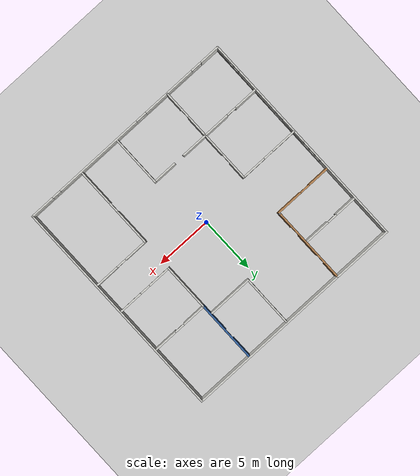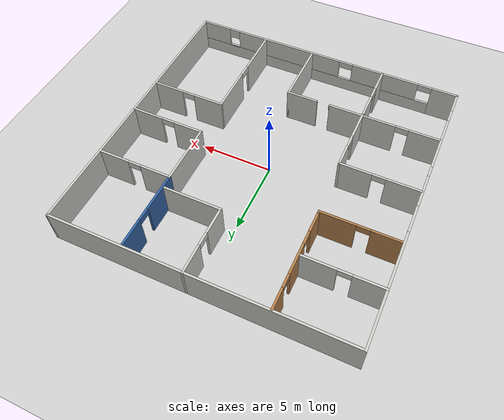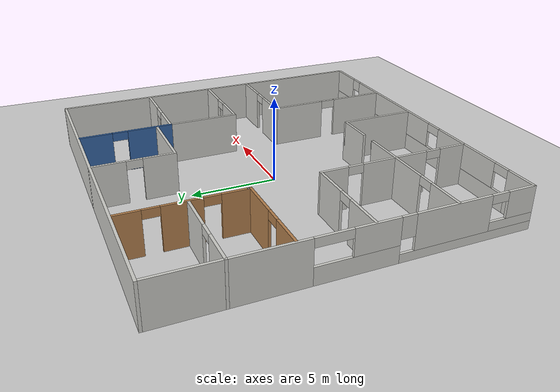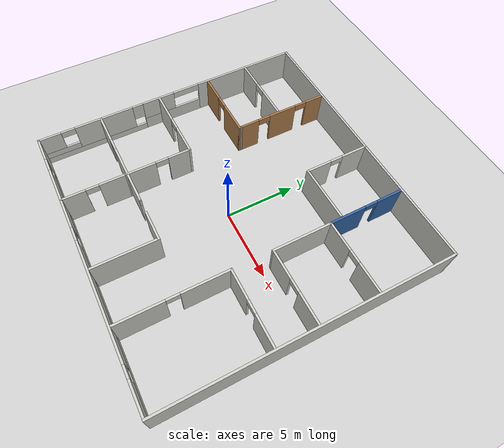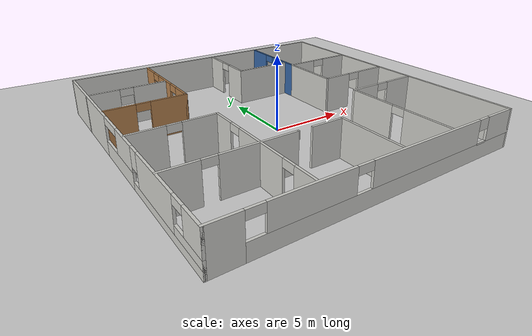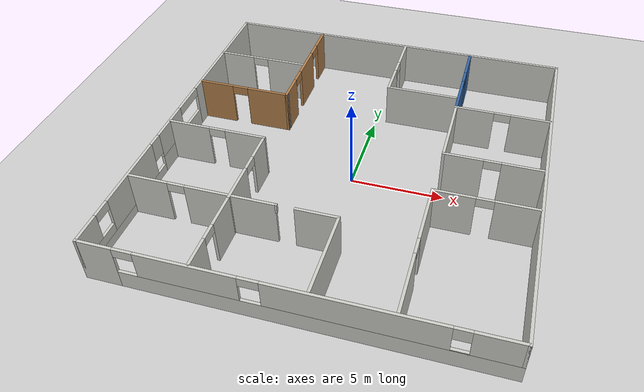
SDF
<sdf version="1.6">
 <world name="default">
  <model name="ground_plane">
   <static>1</static>
   <link name="link">
    <collision name="collision">
     <geometry><plane><normal>0 0 1</normal><size>100 100</size></plane></geometry>
     <surface>
      <contact><collide_bitmask>65535</collide_bitmask></contact>
      <friction><ode><mu>100</mu><mu2>50</mu2></ode></friction>
     </surface>
    </collision>
    <visual name="visual">
     <cast_shadows>0</cast_shadows>
     <geometry><plane><normal>0 0 1</normal><size>100 100</size></plane></geometry>
     <material>
      <script><uri>file://media/materials/scripts/gazebo.material</uri><name>Gazebo/Grey</name></script>
     </material>
    </visual>
   </link>
  </model>
  <model name="theoffice">
   <pose>-0.089892 0.29905 0 0 -0 0</pose>
   <link name="Wall_10">
    <pose>0.001622 -9.925 0 0 -0 0</pose>
    <visual name="Wall_10_Visual_0">
     <pose>-9.06911 0 1.25 0 -0 0</pose>
     <geometry><box><size>1.86178 0.15 2.5</size></box></geometry>
     <material>
      <script><uri>file://media/materials/scripts/gazebo.material</uri><name>Gazebo/CeilingTiled</name></script>
      <ambient>0.00784314 0.00784314 0.00784314 1</ambient>
     </material>
     <meta><layer>0</layer></meta>
    </visual>
    <collision name="Wall_10_Collision_0">
     <geometry><box><size>1.86178 0.15 2.5</size></box></geometry>
     <pose>-9.06911 0 1.25 0 -0 0</pose>
    </collision>
    <visual name="Wall_10_Visual_1">
     <pose>0.930891 0 0.5 0 -0 0</pose>
     <geometry><box><size>18.1382 0.15 1</size></box></geometry>
     <material>
      <script><uri>file://media/materials/scripts/gazebo.material</uri><name>Gazebo/CeilingTiled</name></script>
      <ambient>0.00784314 0.00784314 0.00784314 1</ambient>
     </material>
     <meta><layer>0</layer></meta>
    </visual>
    <collision name="Wall_10_Collision_1">
     <geometry><box><size>18.1382 0.15 1</size></box></geometry>
     <pose>0.930891 0 0.5 0 -0 0</pose>
    </collision>
    <visual name="Wall_10_Visual_2">
     <pose>-4.6856 0 1.75 0 -0 0</pose>
     <geometry><box><size>4.90524 0.15 1.5</size></box></geometry>
     <material>
      <script><uri>file://media/materials/scripts/gazebo.material</uri><name>Gazebo/CeilingTiled</name></script>
      <ambient>0.00784314 0.00784314 0.00784314 1</ambient>
     </material>
     <meta><layer>0</layer></meta>
    </visual>
    <collision name="Wall_10_Collision_2">
     <geometry><box><size>4.90524 0.15 1.5</size></box></geometry>
     <pose>-4.6856 0 1.75 0 -0 0</pose>
    </collision>
    <visual name="Wall_10_Visual_3">
     <pose>2.85911 0 1.75 0 -0 0</pose>
     <geometry><box><size>8.18417 0.15 1.5</size></box></geometry>
     <material>
      <script><uri>file://media/materials/scripts/gazebo.material</uri><name>Gazebo/CeilingTiled</name></script>
      <ambient>0.00784314 0.00784314 0.00784314 1</ambient>
     </material>
     <meta><layer>0</layer></meta>
    </visual>
    <collision name="Wall_10_Collision_3">
     <geometry><box><size>8.18417 0.15 1.5</size></box></geometry>
     <pose>2.85911 0 1.75 0 -0 0</pose>
    </collision>
    <visual name="Wall_10_Visual_4">
     <pose>8.8756 0 1.75 0 -0 0</pose>
     <geometry><box><size>2.2488 0.15 1.5</size></box></geometry>
     <material>
      <script><uri>file://media/materials/scripts/gazebo.material</uri><name>Gazebo/CeilingTiled</name></script>
      <ambient>0.00784314 0.00784314 0.00784314 1</ambient>
     </material>
     <meta><layer>0</layer></meta>
    </visual>
    <collision name="Wall_10_Collision_4">
     <geometry><box><size>2.2488 0.15 1.5</size></box></geometry>
     <pose>8.8756 0 1.75 0 -0 0</pose>
    </collision>
    <visual name="Wall_10_Visual_5">
     <pose>7.3512 0 1 0 -0 0</pose>
     <geometry><box><size>0.8 0.15 0.1</size></box></geometry>
     <material>
      <script><uri>file://media/materials/scripts/gazebo.material</uri><name>Gazebo/CeilingTiled</name></script>
      <ambient>0.00784314 0.00784314 0.00784314 1</ambient>
     </material>
     <meta><layer>0</layer></meta>
    </visual>
    <collision name="Wall_10_Collision_5">
     <geometry><box><size>0.8 0.15 0.1</size></box></geometry>
     <pose>7.3512 0 1 0 -0 0</pose>
    </collision>
    <visual name="Wall_10_Visual_6">
     <pose>7.3512 0 2.15 0 -0 0</pose>
     <geometry><box><size>0.8 0.15 0.7</size></box></geometry>
     <material>
      <script><uri>file://media/materials/scripts/gazebo.material</uri><name>Gazebo/CeilingTiled</name></script>
      <ambient>0.00784314 0.00784314 0.00784314 1</ambient>
     </material>
     <meta><layer>0</layer></meta>
    </visual>
    <collision name="Wall_10_Collision_6">
     <geometry><box><size>0.8 0.15 0.7</size></box></geometry>
     <pose>7.3512 0 2.15 0 -0 0</pose>
    </collision>
    <visual name="Wall_10_Visual_7">
     <pose>-7.63822 0 2.25 0 -0 0</pose>
     <geometry><box><size>1 0.15 0.5</size></box></geometry>
     <material>
      <script><uri>file://media/materials/scripts/gazebo.material</uri><name>Gazebo/CeilingTiled</name></script>
      <ambient>0.00784314 0.00784314 0.00784314 1</ambient>
     </material>
     <meta><layer>0</layer></meta>
    </visual>
    <collision name="Wall_10_Collision_7">
     <geometry><box><size>1 0.15 0.5</size></box></geometry>
     <pose>-7.63822 0 2.25 0 -0 0</pose>
    </collision>
    <visual name="Wall_10_Visual_8">
     <pose>-1.73297 0 2.25 0 -0 0</pose>
     <geometry><box><size>1 0.15 0.5</size></box></geometry>
     <material>
      <script><uri>file://media/materials/scripts/gazebo.material</uri><name>Gazebo/CeilingTiled</name></script>
      <ambient>0.00784314 0.00784314 0.00784314 1</ambient>
     </material>
     <meta><layer>0</layer></meta>
    </visual>
    <collision name="Wall_10_Collision_8">
     <geometry><box><size>1 0.15 0.5</size></box></geometry>
     <pose>-1.73297 0 2.25 0 -0 0</pose>
    </collision>
   </link>
   <link name="Wall_12">
    <collision name="Wall_12_Collision">
     <geometry><box><size>20 0.15 2.5</size></box></geometry>
     <pose>0 0 1.25 0 -0 0</pose>
    </collision>
    <visual name="Wall_12_Visual">
     <pose>0 0 1.25 0 -0 0</pose>
     <geometry><box><size>20 0.15 2.5</size></box></geometry>
     <material>
      <script><uri>file://media/materials/scripts/gazebo.material</uri><name>Gazebo/CeilingTiled</name></script>
      <ambient>0.00784314 0.00784314 0.00784314 1</ambient>
     </material>
     <meta><layer>0</layer></meta>
    </visual>
    <pose>9.92662 0 0 0 -0 1.5708</pose>
   </link>
   <link name="Wall_14">
    <collision name="Wall_14_Collision">
     <geometry><box><size>20 0.15 2.5</size></box></geometry>
     <pose>0 0 1.25 0 -0 0</pose>
    </collision>
    <visual name="Wall_14_Visual">
     <pose>0 0 1.25 0 -0 0</pose>
     <geometry><box><size>20 0.15 2.5</size></box></geometry>
     <material>
      <script><uri>file://media/materials/scripts/gazebo.material</uri><name>Gazebo/CeilingTiled</name></script>
      <ambient>0.00784314 0.00784314 0.00784314 1</ambient>
     </material>
     <meta><layer>0</layer></meta>
    </visual>
    <pose>0.001622 9.925 0 0 -0 0</pose>
   </link>
   <link name="Wall_22">
    <pose>4.76809 7.15642 0 0 -0 -1.5708</pose>
    <visual name="Wall_22_Visual_0">
     <pose>-1.78497 0 1.25 0 -0 0</pose>
     <geometry><box><size>1.93005 0.15 2.5</size></box></geometry>
     <material>
      <script><uri>file://media/materials/scripts/gazebo.material</uri><name>Gazebo/Grey</name></script>
      <ambient>0.203922 0.396078 0.643137 1</ambient>
     </material>
     <meta><layer>0</layer></meta>
    </visual>
    <collision name="Wall_22_Collision_0">
     <geometry><box><size>1.93005 0.15 2.5</size></box></geometry>
     <pose>-1.78497 0 1.25 0 -0 0</pose>
    </collision>
    <visual name="Wall_22_Visual_1">
     <pose>1.41502 0 1.25 0 -0 0</pose>
     <geometry><box><size>2.66995 0.15 2.5</size></box></geometry>
     <material>
      <script><uri>file://media/materials/scripts/gazebo.material</uri><name>Gazebo/Grey</name></script>
      <ambient>0.203922 0.396078 0.643137 1</ambient>
     </material>
     <meta><layer>0</layer></meta>
    </visual>
    <collision name="Wall_22_Collision_1">
     <geometry><box><size>2.66995 0.15 2.5</size></box></geometry>
     <pose>1.41502 0 1.25 0 -0 0</pose>
    </collision>
    <visual name="Wall_22_Visual_2">
     <pose>-0.36995 0 2.25 0 -0 0</pose>
     <geometry><box><size>0.9 0.15 0.5</size></box></geometry>
     <material>
      <script><uri>file://media/materials/scripts/gazebo.material</uri><name>Gazebo/Grey</name></script>
      <ambient>0.203922 0.396078 0.643137 1</ambient>
     </material>
     <meta><layer>0</layer></meta>
    </visual>
    <collision name="Wall_22_Collision_2">
     <geometry><box><size>0.9 0.15 0.5</size></box></geometry>
     <pose>-0.36995 0 2.25 0 -0 0</pose>
    </collision>
   </link>
   <link name="Wall_25">
    <pose>7.31809 4.48142 0 0 -0 0</pose>
    <visual name="Wall_25_Visual_0">
     <pose>-1.54018 0 1.25 0 -0 0</pose>
     <geometry><box><size>2.16963 0.15 2.5</size></box></geometry>
     <material>
      <script><uri>file://media/materials/scripts/gazebo.material</uri><name>Gazebo/CeilingTiled</name></script>
      <ambient>0.203922 0.396078 0.643137 1</ambient>
     </material>
     <meta><layer>0</layer></meta>
    </visual>
    <collision name="Wall_25_Collision_0">
     <geometry><box><size>2.16963 0.15 2.5</size></box></geometry>
     <pose>-1.54018 0 1.25 0 -0 0</pose>
    </collision>
    <visual name="Wall_25_Visual_1">
     <pose>1.53482 0 1.25 0 -0 0</pose>
     <geometry><box><size>2.18037 0.15 2.5</size></box></geometry>
     <material>
      <script><uri>file://media/materials/scripts/gazebo.material</uri><name>Gazebo/CeilingTiled</name></script>
      <ambient>0.203922 0.396078 0.643137 1</ambient>
     </material>
     <meta><layer>0</layer></meta>
    </visual>
    <collision name="Wall_25_Collision_1">
     <geometry><box><size>2.18037 0.15 2.5</size></box></geometry>
     <pose>1.53482 0 1.25 0 -0 0</pose>
    </collision>
    <visual name="Wall_25_Visual_2">
     <pose>-0.00537 0 2.25 0 -0 0</pose>
     <geometry><box><size>0.9 0.15 0.5</size></box></geometry>
     <material>
      <script><uri>file://media/materials/scripts/gazebo.material</uri><name>Gazebo/CeilingTiled</name></script>
      <ambient>0.203922 0.396078 0.643137 1</ambient>
     </material>
     <meta><layer>0</layer></meta>
    </visual>
    <collision name="Wall_25_Collision_2">
     <geometry><box><size>0.9 0.15 0.5</size></box></geometry>
     <pose>-0.00537 0 2.25 0 -0 0</pose>
    </collision>
   </link>
   <link name="Wall_30">
    <pose>-4.49838 -5.4215 0 0 -0 0</pose>
    <visual name="Wall_30_Visual_0">
     <pose>-4.37611 0 1.25 0 -0 0</pose>
     <geometry><box><size>2.24779 0.15 2.5</size></box></geometry>
     <material>
      <script><uri>file://media/materials/scripts/gazebo.material</uri><name>Gazebo/CeilingTiled</name></script>
      <ambient>0.988235 0.913725 0.309804 1</ambient>
     </material>
     <meta><layer>0</layer></meta>
    </visual>
    <collision name="Wall_30_Collision_0">
     <geometry><box><size>2.24779 0.15 2.5</size></box></geometry>
     <pose>-4.37611 0 1.25 0 -0 0</pose>
    </collision>
    <visual name="Wall_30_Visual_1">
     <pose>0.005075 0 1.25 0 -0 0</pose>
     <geometry><box><size>4.71457 0.15 2.5</size></box></geometry>
     <material>
      <script><uri>file://media/materials/scripts/gazebo.material</uri><name>Gazebo/CeilingTiled</name></script>
      <ambient>0.988235 0.913725 0.309804 1</ambient>
     </material>
     <meta><layer>0</layer></meta>
    </visual>
    <collision name="Wall_30_Collision_1">
     <geometry><box><size>4.71457 0.15 2.5</size></box></geometry>
     <pose>0.005075 0 1.25 0 -0 0</pose>
    </collision>
    <visual name="Wall_30_Visual_2">
     <pose>4.38118 0 1.25 0 -0 0</pose>
     <geometry><box><size>2.23764 0.15 2.5</size></box></geometry>
     <material>
      <script><uri>file://media/materials/scripts/gazebo.material</uri><name>Gazebo/CeilingTiled</name></script>
      <ambient>0.988235 0.913725 0.309804 1</ambient>
     </material>
     <meta><layer>0</layer></meta>
    </visual>
    <collision name="Wall_30_Collision_2">
     <geometry><box><size>2.23764 0.15 2.5</size></box></geometry>
     <pose>4.38118 0 1.25 0 -0 0</pose>
    </collision>
    <visual name="Wall_30_Visual_3">
     <pose>-2.80221 0 2.25 0 -0 0</pose>
     <geometry><box><size>0.9 0.15 0.5</size></box></geometry>
     <material>
      <script><uri>file://media/materials/scripts/gazebo.material</uri><name>Gazebo/CeilingTiled</name></script>
      <ambient>0.988235 0.913725 0.309804 1</ambient>
     </material>
     <meta><layer>0</layer></meta>
    </visual>
    <collision name="Wall_30_Collision_3">
     <geometry><box><size>0.9 0.15 0.5</size></box></geometry>
     <pose>-2.80221 0 2.25 0 -0 0</pose>
    </collision>
    <visual name="Wall_30_Visual_4">
     <pose>2.36236 0 2.25 0 -0 0</pose>
     <geometry><box><size>0.1 0.15 0.5</size></box></geometry>
     <material>
      <script><uri>file://media/materials/scripts/gazebo.material</uri><name>Gazebo/CeilingTiled</name></script>
      <ambient>0.988235 0.913725 0.309804 1</ambient>
     </material>
     <meta><layer>0</layer></meta>
    </visual>
    <collision name="Wall_30_Collision_4">
     <geometry><box><size>0.1 0.15 0.5</size></box></geometry>
     <pose>2.36236 0 2.25 0 -0 0</pose>
    </collision>
   </link>
   <link name="Wall_31">
    <collision name="Wall_31_Collision">
     <geometry><box><size>4.5 0.15 2.5</size></box></geometry>
     <pose>0 0 1.25 0 -0 0</pose>
    </collision>
    <visual name="Wall_31_Visual">
     <pose>0 0 1.25 0 -0 0</pose>
     <geometry><box><size>4.5 0.15 2.5</size></box></geometry>
     <material>
      <script><uri>file://media/materials/scripts/gazebo.material</uri><name>Gazebo/CeilingTiled</name></script>
      <ambient>0.988235 0.913725 0.309804 1</ambient>
     </material>
     <meta><layer>0</layer></meta>
    </visual>
    <pose>0.926622 -7.5965 0 0 -0 -1.5708</pose>
   </link>
   <link name="Wall_33">
    <pose>-4.49596 -7.69007 0 0 -0 -1.5708</pose>
    <visual name="Wall_33_Visual_0">
     <pose>-1.27394 0 1.25 0 -0 0</pose>
     <geometry><box><size>1.95211 0.15 2.5</size></box></geometry>
     <material>
      <script><uri>file://media/materials/scripts/gazebo.material</uri><name>Gazebo/CeilingTiled</name></script>
      <ambient>0.203922 0.396078 0.643137 1</ambient>
     </material>
     <meta><layer>0</layer></meta>
    </visual>
    <collision name="Wall_33_Collision_0">
     <geometry><box><size>1.95211 0.15 2.5</size></box></geometry>
     <pose>-1.27394 0 1.25 0 -0 0</pose>
    </collision>
    <visual name="Wall_33_Visual_1">
     <pose>1.42606 0 1.25 0 -0 0</pose>
     <geometry><box><size>1.64789 0.15 2.5</size></box></geometry>
     <material>
      <script><uri>file://media/materials/scripts/gazebo.material</uri><name>Gazebo/CeilingTiled</name></script>
      <ambient>0.203922 0.396078 0.643137 1</ambient>
     </material>
     <meta><layer>0</layer></meta>
    </visual>
    <collision name="Wall_33_Collision_1">
     <geometry><box><size>1.64789 0.15 2.5</size></box></geometry>
     <pose>1.42606 0 1.25 0 -0 0</pose>
    </collision>
    <visual name="Wall_33_Visual_2">
     <pose>0.152112 0 2.25 0 -0 0</pose>
     <geometry><box><size>0.9 0.15 0.5</size></box></geometry>
     <material>
      <script><uri>file://media/materials/scripts/gazebo.material</uri><name>Gazebo/CeilingTiled</name></script>
      <ambient>0.203922 0.396078 0.643137 1</ambient>
     </material>
     <meta><layer>0</layer></meta>
    </visual>
    <collision name="Wall_33_Collision_2">
     <geometry><box><size>0.9 0.15 0.5</size></box></geometry>
     <pose>0.152112 0 2.25 0 -0 0</pose>
    </collision>
   </link>
   <link name="Wall_35">
    <collision name="Wall_35_Collision">
     <geometry><box><size>4.25 0.15 2.5</size></box></geometry>
     <pose>0 0 1.25 0 -0 0</pose>
    </collision>
    <visual name="Wall_35_Visual">
     <pose>0 0 1.25 0 -0 0</pose>
     <geometry><box><size>4.25 0.15 2.5</size></box></geometry>
     <material>
      <script><uri>file://media/materials/scripts/gazebo.material</uri><name>Gazebo/CeilingTiled</name></script>
      <ambient>0.988235 0.913725 0.309804 1</ambient>
     </material>
     <meta><layer>0</layer></meta>
    </visual>
    <pose>4.76809 2.43142 0 0 -0 -1.5708</pose>
   </link>
   <link name="Wall_36">
    <pose>7.31809 0.381424 0 0 -0 0</pose>
    <visual name="Wall_36_Visual_0">
     <pose>-1.56417 0 1.25 0 -0 0</pose>
     <geometry><box><size>2.12167 0.15 2.5</size></box></geometry>
     <material>
      <script><uri>file://media/materials/scripts/gazebo.material</uri><name>Gazebo/CeilingTiled</name></script>
      <ambient>0.180392 0.203922 0.211765 1</ambient>
     </material>
     <meta><layer>0</layer></meta>
    </visual>
    <collision name="Wall_36_Collision_0">
     <geometry><box><size>2.12167 0.15 2.5</size></box></geometry>
     <pose>-1.56417 0 1.25 0 -0 0</pose>
    </collision>
    <visual name="Wall_36_Visual_1">
     <pose>1.51083 0 1.25 0 -0 0</pose>
     <geometry><box><size>2.22833 0.15 2.5</size></box></geometry>
     <material>
      <script><uri>file://media/materials/scripts/gazebo.material</uri><name>Gazebo/CeilingTiled</name></script>
      <ambient>0.180392 0.203922 0.211765 1</ambient>
     </material>
     <meta><layer>0</layer></meta>
    </visual>
    <collision name="Wall_36_Collision_1">
     <geometry><box><size>2.22833 0.15 2.5</size></box></geometry>
     <pose>1.51083 0 1.25 0 -0 0</pose>
    </collision>
    <visual name="Wall_36_Visual_2">
     <pose>-0.053335 0 2.25 0 -0 0</pose>
     <geometry><box><size>0.9 0.15 0.5</size></box></geometry>
     <material>
      <script><uri>file://media/materials/scripts/gazebo.material</uri><name>Gazebo/CeilingTiled</name></script>
      <ambient>0.180392 0.203922 0.211765 1</ambient>
     </material>
     <meta><layer>0</layer></meta>
    </visual>
    <collision name="Wall_36_Collision_2">
     <geometry><box><size>0.9 0.15 0.5</size></box></geometry>
     <pose>-0.053335 0 2.25 0 -0 0</pose>
    </collision>
   </link>
   <link name="Wall_38">
    <pose>7.2712 -2.42706 0 0 -0 3.14159</pose>
    <visual name="Wall_38_Visual_0">
     <pose>-1.53166 0 1.25 0 -0 0</pose>
     <geometry><box><size>2.18669 0.15 2.5</size></box></geometry>
     <material>
      <script><uri>file://media/materials/scripts/gazebo.material</uri><name>Gazebo/CeilingTiled</name></script>
      <ambient>0.988235 0.913725 0.309804 1</ambient>
     </material>
     <meta><layer>0</layer></meta>
    </visual>
    <collision name="Wall_38_Collision_0">
     <geometry><box><size>2.18669 0.15 2.5</size></box></geometry>
     <pose>-1.53166 0 1.25 0 -0 0</pose>
    </collision>
    <visual name="Wall_38_Visual_1">
     <pose>1.54334 0 1.25 0 -0 0</pose>
     <geometry><box><size>2.16331 0.15 2.5</size></box></geometry>
     <material>
      <script><uri>file://media/materials/scripts/gazebo.material</uri><name>Gazebo/CeilingTiled</name></script>
      <ambient>0.988235 0.913725 0.309804 1</ambient>
     </material>
     <meta><layer>0</layer></meta>
    </visual>
    <collision name="Wall_38_Collision_1">
     <geometry><box><size>2.16331 0.15 2.5</size></box></geometry>
     <pose>1.54334 0 1.25 0 -0 0</pose>
    </collision>
    <visual name="Wall_38_Visual_2">
     <pose>0.011685 0 2.25 0 -0 0</pose>
     <geometry><box><size>0.9 0.15 0.5</size></box></geometry>
     <material>
      <script><uri>file://media/materials/scripts/gazebo.material</uri><name>Gazebo/CeilingTiled</name></script>
      <ambient>0.988235 0.913725 0.309804 1</ambient>
     </material>
     <meta><layer>0</layer></meta>
    </visual>
    <collision name="Wall_38_Collision_2">
     <geometry><box><size>0.9 0.15 0.5</size></box></geometry>
     <pose>0.011685 0 2.25 0 -0 0</pose>
    </collision>
   </link>
   <link name="Wall_39">
    <pose>4.7212 -6.10206 0 0 -0 -1.5708</pose>
    <visual name="Wall_39_Visual_0">
     <pose>-2.08433 0 1.25 0 -0 0</pose>
     <geometry><box><size>3.33134 0.15 2.5</size></box></geometry>
     <material>
      <script><uri>file://media/materials/scripts/gazebo.material</uri><name>Gazebo/CeilingTiled</name></script>
      <ambient>0.988235 0.913725 0.309804 1</ambient>
     </material>
     <meta><layer>0</layer></meta>
    </visual>
    <collision name="Wall_39_Collision_0">
     <geometry><box><size>3.33134 0.15 2.5</size></box></geometry>
     <pose>-2.08433 0 1.25 0 -0 0</pose>
    </collision>
    <visual name="Wall_39_Visual_1">
     <pose>2.11567 0 1.25 0 -0 0</pose>
     <geometry><box><size>3.26866 0.15 2.5</size></box></geometry>
     <material>
      <script><uri>file://media/materials/scripts/gazebo.material</uri><name>Gazebo/CeilingTiled</name></script>
      <ambient>0.988235 0.913725 0.309804 1</ambient>
     </material>
     <meta><layer>0</layer></meta>
    </visual>
    <collision name="Wall_39_Collision_1">
     <geometry><box><size>3.26866 0.15 2.5</size></box></geometry>
     <pose>2.11567 0 1.25 0 -0 0</pose>
    </collision>
    <visual name="Wall_39_Visual_2">
     <pose>0.031344 0 2.25 0 -0 0</pose>
     <geometry><box><size>0.9 0.15 0.5</size></box></geometry>
     <material>
      <script><uri>file://media/materials/scripts/gazebo.material</uri><name>Gazebo/CeilingTiled</name></script>
      <ambient>0.988235 0.913725 0.309804 1</ambient>
     </material>
     <meta><layer>0</layer></meta>
    </visual>
    <collision name="Wall_39_Collision_2">
     <geometry><box><size>0.9 0.15 0.5</size></box></geometry>
     <pose>0.031344 0 2.25 0 -0 0</pose>
    </collision>
   </link>
   <link name="Wall_41">
    <pose>-4.49596 -3.21507 0 0 -0 1.5708</pose>
    <visual name="Wall_41_Visual_0">
     <pose>-1.28494 0 1.25 0 -0 0</pose>
     <geometry><box><size>2.18012 0.15 2.5</size></box></geometry>
     <material>
      <script><uri>file://media/materials/scripts/gazebo.material</uri><name>Gazebo/CeilingTiled</name></script>
      <ambient>0.203922 0.396078 0.643137 1</ambient>
     </material>
     <meta><layer>0</layer></meta>
    </visual>
    <collision name="Wall_41_Collision_0">
     <geometry><box><size>2.18012 0.15 2.5</size></box></geometry>
     <pose>-1.28494 0 1.25 0 -0 0</pose>
    </collision>
    <visual name="Wall_41_Visual_1">
     <pose>1.54006 0 1.25 0 -0 0</pose>
     <geometry><box><size>1.66987 0.15 2.5</size></box></geometry>
     <material>
      <script><uri>file://media/materials/scripts/gazebo.material</uri><name>Gazebo/CeilingTiled</name></script>
      <ambient>0.203922 0.396078 0.643137 1</ambient>
     </material>
     <meta><layer>0</layer></meta>
    </visual>
    <collision name="Wall_41_Collision_1">
     <geometry><box><size>1.66987 0.15 2.5</size></box></geometry>
     <pose>1.54006 0 1.25 0 -0 0</pose>
    </collision>
    <visual name="Wall_41_Visual_2">
     <pose>0.255125 0 2.25 0 -0 0</pose>
     <geometry><box><size>0.9 0.15 0.5</size></box></geometry>
     <material>
      <script><uri>file://media/materials/scripts/gazebo.material</uri><name>Gazebo/CeilingTiled</name></script>
      <ambient>0.203922 0.396078 0.643137 1</ambient>
     </material>
     <meta><layer>0</layer></meta>
    </visual>
    <collision name="Wall_41_Collision_2">
     <geometry><box><size>0.9 0.15 0.5</size></box></geometry>
     <pose>0.255125 0 2.25 0 -0 0</pose>
    </collision>
   </link>
   <link name="Wall_44">
    <pose>-7.17096 -0.915074 0 0 -0 3.14159</pose>
    <visual name="Wall_44_Visual_0">
     <pose>-1.61655 0 1.25 0 -0 0</pose>
     <geometry><box><size>2.26689 0.15 2.5</size></box></geometry>
     <material>
      <script><uri>file://media/materials/scripts/gazebo.material</uri><name>Gazebo/CeilingTiled</name></script>
      <ambient>0.988235 0.913725 0.309804 1</ambient>
     </material>
     <meta><layer>0</layer></meta>
    </visual>
    <collision name="Wall_44_Collision_0">
     <geometry><box><size>2.26689 0.15 2.5</size></box></geometry>
     <pose>-1.61655 0 1.25 0 -0 0</pose>
    </collision>
    <visual name="Wall_44_Visual_1">
     <pose>1.58344 0 1.25 0 -0 0</pose>
     <geometry><box><size>2.33311 0.15 2.5</size></box></geometry>
     <material>
      <script><uri>file://media/materials/scripts/gazebo.material</uri><name>Gazebo/CeilingTiled</name></script>
      <ambient>0.988235 0.913725 0.309804 1</ambient>
     </material>
     <meta><layer>0</layer></meta>
    </visual>
    <collision name="Wall_44_Collision_1">
     <geometry><box><size>2.33311 0.15 2.5</size></box></geometry>
     <pose>1.58344 0 1.25 0 -0 0</pose>
    </collision>
    <visual name="Wall_44_Visual_2">
     <pose>-0.033111 0 2.25 0 -0 0</pose>
     <geometry><box><size>0.9 0.15 0.5</size></box></geometry>
     <material>
      <script><uri>file://media/materials/scripts/gazebo.material</uri><name>Gazebo/CeilingTiled</name></script>
      <ambient>0.988235 0.913725 0.309804 1</ambient>
     </material>
     <meta><layer>0</layer></meta>
    </visual>
    <collision name="Wall_44_Collision_2">
     <geometry><box><size>0.9 0.15 0.5</size></box></geometry>
     <pose>-0.033111 0 2.25 0 -0 0</pose>
    </collision>
   </link>
   <link name="Wall_47">
    <pose>0.74431 7.625 0 0 -0 -1.5708</pose>
    <visual name="Wall_47_Visual_0">
     <pose>-1.38979 0 1.25 0 -0 0</pose>
     <geometry><box><size>1.97043 0.15 2.5</size></box></geometry>
     <material>
      <script><uri>file://media/materials/scripts/gazebo.material</uri><name>Gazebo/CeilingTiled</name></script>
      <ambient>0.988235 0.913725 0.309804 1</ambient>
     </material>
     <meta><layer>0</layer></meta>
    </visual>
    <collision name="Wall_47_Collision_0">
     <geometry><box><size>1.97043 0.15 2.5</size></box></geometry>
     <pose>-1.38979 0 1.25 0 -0 0</pose>
    </collision>
    <visual name="Wall_47_Visual_1">
     <pose>1.43521 0 1.25 0 -0 0</pose>
     <geometry><box><size>1.87957 0.15 2.5</size></box></geometry>
     <material>
      <script><uri>file://media/materials/scripts/gazebo.material</uri><name>Gazebo/CeilingTiled</name></script>
      <ambient>0.988235 0.913725 0.309804 1</ambient>
     </material>
     <meta><layer>0</layer></meta>
    </visual>
    <collision name="Wall_47_Collision_1">
     <geometry><box><size>1.87957 0.15 2.5</size></box></geometry>
     <pose>1.43521 0 1.25 0 -0 0</pose>
    </collision>
    <visual name="Wall_47_Visual_2">
     <pose>0.045426 0 2.25 0 -0 0</pose>
     <geometry><box><size>0.9 0.15 0.5</size></box></geometry>
     <material>
      <script><uri>file://media/materials/scripts/gazebo.material</uri><name>Gazebo/CeilingTiled</name></script>
      <ambient>0.988235 0.913725 0.309804 1</ambient>
     </material>
     <meta><layer>0</layer></meta>
    </visual>
    <collision name="Wall_47_Collision_2">
     <geometry><box><size>0.9 0.15 0.5</size></box></geometry>
     <pose>0.045426 0 2.25 0 -0 0</pose>
    </collision>
   </link>
   <link name="Wall_48">
    <collision name="Wall_48_Collision">
     <geometry><box><size>4 0.15 2.5</size></box></geometry>
     <pose>0 0 1.25 0 -0 0</pose>
    </collision>
    <visual name="Wall_48_Visual">
     <pose>0 0 1.25 0 -0 0</pose>
     <geometry><box><size>4 0.15 2.5</size></box></geometry>
     <material>
      <script><uri>file://media/materials/scripts/gazebo.material</uri><name>Gazebo/CeilingTiled</name></script>
      <ambient>0.988235 0.913725 0.309804 1</ambient>
     </material>
     <meta><layer>0</layer></meta>
    </visual>
    <pose>2.66931 5.325 0 0 -0 0</pose>
   </link>
   <link name="Wall_50">
    <pose>-7.24167 3.02777 0 0 -0 0</pose>
    <visual name="Wall_50_Visual_0">
     <pose>-1.66058 0 1.25 0 -0 0</pose>
     <geometry><box><size>1.97784 0.15 2.5</size></box></geometry>
     <material>
      <script><uri>file://media/materials/scripts/gazebo.material</uri><name>Gazebo/Wood</name></script>
      <ambient>1 1 1 1</ambient>
     </material>
     <meta><layer>0</layer></meta>
    </visual>
    <collision name="Wall_50_Collision_0">
     <geometry><box><size>1.97784 0.15 2.5</size></box></geometry>
     <pose>-1.66058 0 1.25 0 -0 0</pose>
    </collision>
    <visual name="Wall_50_Visual_1">
     <pose>1.43892 0 1.25 0 -0 0</pose>
     <geometry><box><size>2.42116 0.15 2.5</size></box></geometry>
     <material>
      <script><uri>file://media/materials/scripts/gazebo.material</uri><name>Gazebo/Wood</name></script>
      <ambient>1 1 1 1</ambient>
     </material>
     <meta><layer>0</layer></meta>
    </visual>
    <collision name="Wall_50_Collision_1">
     <geometry><box><size>2.42116 0.15 2.5</size></box></geometry>
     <pose>1.43892 0 1.25 0 -0 0</pose>
    </collision>
    <visual name="Wall_50_Visual_2">
     <pose>-0.221664 0 2.25 0 -0 0</pose>
     <geometry><box><size>0.9 0.15 0.5</size></box></geometry>
     <material>
      <script><uri>file://media/materials/scripts/gazebo.material</uri><name>Gazebo/Wood</name></script>
      <ambient>1 1 1 1</ambient>
     </material>
     <meta><layer>0</layer></meta>
    </visual>
    <collision name="Wall_50_Collision_2">
     <geometry><box><size>0.9 0.15 0.5</size></box></geometry>
     <pose>-0.221664 0 2.25 0 -0 0</pose>
    </collision>
   </link>
   <link name="Wall_55">
    <collision name="Wall_55_Collision">
     <geometry><box><size>0.15 0.15 2.5</size></box></geometry>
     <pose>0 0 1.25 0 -0 0</pose>
    </collision>
    <visual name="Wall_55_Visual">
     <pose>0 0 1.25 0 -0 0</pose>
     <geometry><box><size>0.15 0.15 2.5</size></box></geometry>
     <material>
      <script><uri>file://media/materials/scripts/gazebo.material</uri><name>Gazebo/Grey</name></script>
      <ambient>1 1 1 1</ambient>
     </material>
     <meta><layer>0</layer></meta>
    </visual>
    <pose>-4.66695 3.1448 0 0 -0 0</pose>
   </link>
   <link name="Wall_58">
    <pose>-4.66717 6.45277 0 0 -0 1.5708</pose>
    <visual name="Wall_58_Visual_0">
     <pose>-2.6942 0 1.25 0 -0 0</pose>
     <geometry><box><size>1.6116 0.15 2.5</size></box></geometry>
     <material>
      <script><uri>file://media/materials/scripts/gazebo.material</uri><name>Gazebo/Wood</name></script>
      <ambient>1 1 1 1</ambient>
     </material>
     <meta><layer>0</layer></meta>
    </visual>
    <collision name="Wall_58_Collision_0">
     <geometry><box><size>1.6116 0.15 2.5</size></box></geometry>
     <pose>-2.6942 0 1.25 0 -0 0</pose>
    </collision>
    <visual name="Wall_58_Visual_1">
     <pose>0.066958 0 1.25 0 -0 0</pose>
     <geometry><box><size>2.11071 0.15 2.5</size></box></geometry>
     <material>
      <script><uri>file://media/materials/scripts/gazebo.material</uri><name>Gazebo/Wood</name></script>
      <ambient>1 1 1 1</ambient>
     </material>
     <meta><layer>0</layer></meta>
    </visual>
    <collision name="Wall_58_Collision_1">
     <geometry><box><size>2.11071 0.15 2.5</size></box></geometry>
     <pose>0.066958 0 1.25 0 -0 0</pose>
    </collision>
    <visual name="Wall_58_Visual_2">
     <pose>2.76116 0 1.25 0 -0 0</pose>
     <geometry><box><size>1.47769 0.15 2.5</size></box></geometry>
     <material>
      <script><uri>file://media/materials/scripts/gazebo.material</uri><name>Gazebo/Wood</name></script>
      <ambient>1 1 1 1</ambient>
     </material>
     <meta><layer>0</layer></meta>
    </visual>
    <collision name="Wall_58_Collision_2">
     <geometry><box><size>1.47769 0.15 2.5</size></box></geometry>
     <pose>2.76116 0 1.25 0 -0 0</pose>
    </collision>
    <visual name="Wall_58_Visual_3">
     <pose>-1.4384 0 2.25 0 -0 0</pose>
     <geometry><box><size>0.9 0.15 0.5</size></box></geometry>
     <material>
      <script><uri>file://media/materials/scripts/gazebo.material</uri><name>Gazebo/Wood</name></script>
      <ambient>1 1 1 1</ambient>
     </material>
     <meta><layer>0</layer></meta>
    </visual>
    <collision name="Wall_58_Collision_3">
     <geometry><box><size>0.9 0.15 0.5</size></box></geometry>
     <pose>-1.4384 0 2.25 0 -0 0</pose>
    </collision>
    <visual name="Wall_58_Visual_4">
     <pose>1.57231 0 2.25 0 -0 0</pose>
     <geometry><box><size>0.9 0.15 0.5</size></box></geometry>
     <material>
      <script><uri>file://media/materials/scripts/gazebo.material</uri><name>Gazebo/Wood</name></script>
      <ambient>1 1 1 1</ambient>
     </material>
     <meta><layer>0</layer></meta>
    </visual>
    <collision name="Wall_58_Collision_4">
     <geometry><box><size>0.9 0.15 0.5</size></box></geometry>
     <pose>1.57231 0 2.25 0 -0 0</pose>
    </collision>
   </link>
   <link name="Wall_60">
    <pose>-7.37662 6.21928 0 0 -0 0</pose>
    <visual name="Wall_60_Visual_0">
     <pose>-1.57496 0 1.25 0 -0 0</pose>
     <geometry><box><size>2.10009 0.15 2.5</size></box></geometry>
     <material>
      <script><uri>file://media/materials/scripts/gazebo.material</uri><name>Gazebo/CeilingTiled</name></script>
      <ambient>0.203922 0.396078 0.643137 1</ambient>
     </material>
     <meta><layer>0</layer></meta>
    </visual>
    <collision name="Wall_60_Collision_0">
     <geometry><box><size>2.10009 0.15 2.5</size></box></geometry>
     <pose>-1.57496 0 1.25 0 -0 0</pose>
    </collision>
    <visual name="Wall_60_Visual_1">
     <pose>1.50005 0 1.25 0 -0 0</pose>
     <geometry><box><size>2.24991 0.15 2.5</size></box></geometry>
     <material>
      <script><uri>file://media/materials/scripts/gazebo.material</uri><name>Gazebo/CeilingTiled</name></script>
      <ambient>0.203922 0.396078 0.643137 1</ambient>
     </material>
     <meta><layer>0</layer></meta>
    </visual>
    <collision name="Wall_60_Collision_1">
     <geometry><box><size>2.24991 0.15 2.5</size></box></geometry>
     <pose>1.50005 0 1.25 0 -0 0</pose>
    </collision>
    <visual name="Wall_60_Visual_2">
     <pose>-0.074909 0 2.25 0 -0 0</pose>
     <geometry><box><size>0.9 0.15 0.5</size></box></geometry>
     <material>
      <script><uri>file://media/materials/scripts/gazebo.material</uri><name>Gazebo/CeilingTiled</name></script>
      <ambient>0.203922 0.396078 0.643137 1</ambient>
     </material>
     <meta><layer>0</layer></meta>
    </visual>
    <collision name="Wall_60_Collision_2">
     <geometry><box><size>0.9 0.15 0.5</size></box></geometry>
     <pose>-0.074909 0 2.25 0 -0 0</pose>
    </collision>
   </link>
   <link name="Wall_7">
    <pose>-9.92338 0 0 0 -0 -1.5708</pose>
    <visual name="Wall_7_Visual_0">
     <pose>-6.10882 0 1.25 0 -0 0</pose>
     <geometry><box><size>7.78235 0.15 2.5</size></box></geometry>
     <material>
      <script><uri>file://media/materials/scripts/gazebo.material</uri><name>Gazebo/CeilingTiled</name></script>
      <ambient>0.00784314 0.00784314 0.00784314 1</ambient>
     </material>
     <meta><layer>0</layer></meta>
    </visual>
    <collision name="Wall_7_Collision_0">
     <geometry><box><size>7.78235 0.15 2.5</size></box></geometry>
     <pose>-6.10882 0 1.25 0 -0 0</pose>
    </collision>
    <visual name="Wall_7_Visual_1">
     <pose>0.008628 0 0.5 0 -0 0</pose>
     <geometry><box><size>4.45255 0.15 1</size></box></geometry>
     <material>
      <script><uri>file://media/materials/scripts/gazebo.material</uri><name>Gazebo/CeilingTiled</name></script>
      <ambient>0.00784314 0.00784314 0.00784314 1</ambient>
     </material>
     <meta><layer>0</layer></meta>
    </visual>
    <collision name="Wall_7_Collision_1">
     <geometry><box><size>4.45255 0.15 1</size></box></geometry>
     <pose>0.008628 0 0.5 0 -0 0</pose>
    </collision>
    <visual name="Wall_7_Visual_2">
     <pose>6.11745 0 0.25 0 -0 0</pose>
     <geometry><box><size>7.7651 0.15 0.5</size></box></geometry>
     <material>
      <script><uri>file://media/materials/scripts/gazebo.material</uri><name>Gazebo/CeilingTiled</name></script>
      <ambient>0.00784314 0.00784314 0.00784314 1</ambient>
     </material>
     <meta><layer>0</layer></meta>
    </visual>
    <collision name="Wall_7_Collision_2">
     <geometry><box><size>7.7651 0.15 0.5</size></box></geometry>
     <pose>6.11745 0 0.25 0 -0 0</pose>
    </collision>
    <visual name="Wall_7_Visual_3">
     <pose>5.19172 0 1.5 0 -0 0</pose>
     <geometry><box><size>4.31364 0.15 2</size></box></geometry>
     <material>
      <script><uri>file://media/materials/scripts/gazebo.material</uri><name>Gazebo/CeilingTiled</name></script>
      <ambient>0.00784314 0.00784314 0.00784314 1</ambient>
     </material>
     <meta><layer>0</layer></meta>
    </visual>
    <collision name="Wall_7_Collision_3">
     <geometry><box><size>4.31364 0.15 2</size></box></geometry>
     <pose>5.19172 0 1.5 0 -0 0</pose>
    </collision>
    <visual name="Wall_7_Visual_4">
     <pose>8.67427 0 0.75 0 -0 0</pose>
     <geometry><box><size>2.65146 0.15 0.5</size></box></geometry>
     <material>
      <script><uri>file://media/materials/scripts/gazebo.material</uri><name>Gazebo/CeilingTiled</name></script>
      <ambient>0.00784314 0.00784314 0.00784314 1</ambient>
     </material>
     <meta><layer>0</layer></meta>
    </visual>
    <collision name="Wall_7_Collision_4">
     <geometry><box><size>2.65146 0.15 0.5</size></box></geometry>
     <pose>8.67427 0 0.75 0 -0 0</pose>
    </collision>
    <visual name="Wall_7_Visual_5">
     <pose>1.00863 0 1.75 0 -0 0</pose>
     <geometry><box><size>2.45255 0.15 1.5</size></box></geometry>
     <material>
      <script><uri>file://media/materials/scripts/gazebo.material</uri><name>Gazebo/CeilingTiled</name></script>
      <ambient>0.00784314 0.00784314 0.00784314 1</ambient>
     </material>
     <meta><layer>0</layer></meta>
    </visual>
    <collision name="Wall_7_Collision_5">
     <geometry><box><size>2.45255 0.15 1.5</size></box></geometry>
     <pose>1.00863 0 1.75 0 -0 0</pose>
    </collision>
    <visual name="Wall_7_Visual_6">
     <pose>1.00863 0 1.75 0 -0 0</pose>
     <geometry><box><size>2.45255 0.15 1.5</size></box></geometry>
     <material>
      <script><uri>file://media/materials/scripts/gazebo.material</uri><name>Gazebo/CeilingTiled</name></script>
      <ambient>0.00784314 0.00784314 0.00784314 1</ambient>
     </material>
     <meta><layer>0</layer></meta>
    </visual>
    <collision name="Wall_7_Collision_6">
     <geometry><box><size>2.45255 0.15 1.5</size></box></geometry>
     <pose>1.00863 0 1.75 0 -0 0</pose>
    </collision>
    <visual name="Wall_7_Visual_7">
     <pose>9.17427 0 1.75 0 -0 0</pose>
     <geometry><box><size>1.65146 0.15 1.5</size></box></geometry>
     <material>
      <script><uri>file://media/materials/scripts/gazebo.material</uri><name>Gazebo/CeilingTiled</name></script>
      <ambient>0.00784314 0.00784314 0.00784314 1</ambient>
     </material>
     <meta><layer>0</layer></meta>
    </visual>
    <collision name="Wall_7_Collision_7">
     <geometry><box><size>1.65146 0.15 1.5</size></box></geometry>
     <pose>9.17427 0 1.75 0 -0 0</pose>
    </collision>
    <visual name="Wall_7_Visual_8">
     <pose>2.6349 0 1.9 0 -0 0</pose>
     <geometry><box><size>0.8 0.15 1.2</size></box></geometry>
     <material>
      <script><uri>file://media/materials/scripts/gazebo.material</uri><name>Gazebo/CeilingTiled</name></script>
      <ambient>0.00784314 0.00784314 0.00784314 1</ambient>
     </material>
     <meta><layer>0</layer></meta>
    </visual>
    <collision name="Wall_7_Collision_8">
     <geometry><box><size>0.8 0.15 1.2</size></box></geometry>
     <pose>2.6349 0 1.9 0 -0 0</pose>
    </collision>
    <visual name="Wall_7_Visual_9">
     <pose>2.6349 0 1.9 0 -0 0</pose>
     <geometry><box><size>0.8 0.15 1.2</size></box></geometry>
     <material>
      <script><uri>file://media/materials/scripts/gazebo.material</uri><name>Gazebo/CeilingTiled</name></script>
      <ambient>0.00784314 0.00784314 0.00784314 1</ambient>
     </material>
     <meta><layer>0</layer></meta>
    </visual>
    <collision name="Wall_7_Collision_9">
     <geometry><box><size>0.8 0.15 1.2</size></box></geometry>
     <pose>2.6349 0 1.9 0 -0 0</pose>
    </collision>
    <visual name="Wall_7_Visual_10">
     <pose>-1.21765 0 2.25 0 -0 0</pose>
     <geometry><box><size>2 0.15 0.5</size></box></geometry>
     <material>
      <script><uri>file://media/materials/scripts/gazebo.material</uri><name>Gazebo/CeilingTiled</name></script>
      <ambient>0.00784314 0.00784314 0.00784314 1</ambient>
     </material>
     <meta><layer>0</layer></meta>
    </visual>
    <collision name="Wall_7_Collision_10">
     <geometry><box><size>2 0.15 0.5</size></box></geometry>
     <pose>-1.21765 0 2.25 0 -0 0</pose>
    </collision>
    <visual name="Wall_7_Visual_11">
     <pose>7.84854 0 2.25 0 -0 0</pose>
     <geometry><box><size>1 0.15 0.5</size></box></geometry>
     <material>
      <script><uri>file://media/materials/scripts/gazebo.material</uri><name>Gazebo/CeilingTiled</name></script>
      <ambient>0.00784314 0.00784314 0.00784314 1</ambient>
     </material>
     <meta><layer>0</layer></meta>
    </visual>
    <collision name="Wall_7_Collision_11">
     <geometry><box><size>1 0.15 0.5</size></box></geometry>
     <pose>7.84854 0 2.25 0 -0 0</pose>
    </collision>
   </link>
   <static>1</static>
  </model>
 </world>
</sdf>
